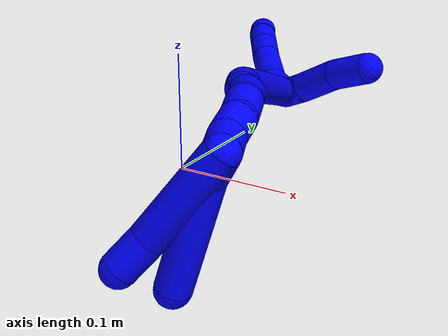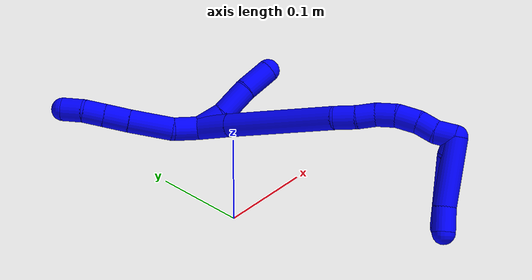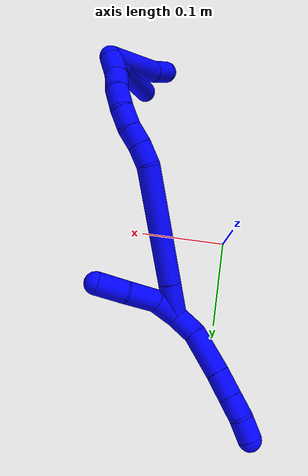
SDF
<sdf version="1.7">
 <world name="default">
  <model name="photoneo_s_sensor">
   <static>1</static>
   <pose>0 0 2 1.57079 1.57079 3.14159</pose>
   <link name="link">
    <inertial><mass>0.1</mass></inertial>
    <sensor name="sensor" type="depth">
     <update_rate>30</update_rate>
     <camera>
      <horizontal_fov>1.22</horizontal_fov>
      <image><width>1920</width><height>1200</height><format>B8G8R8</format></image>
      <clip><near>0.1</near><far>4</far></clip>
      <depth_camera><output>points</output></depth_camera>
     </camera>
     <plugin name="camera_plugin" filename="libgazebo_ros_depth_camera.so">
      <baseline>0.2</baseline>
      <alwaysOn>1</alwaysOn>
      <updateRate>0.0</updateRate>
      <cameraName>camera_ir</cameraName>
      <imageTopicName>/camera/color/image_raw</imageTopicName>
      <cameraInfoTopicName>/camera/color/camera_info</cameraInfoTopicName>
      <depthImageTopicName>/camera/depth/image_raw</depthImageTopicName>
      <depthImageCameraInfoTopicName>/camera/depth/camera_info</depthImageCameraInfoTopicName>
      <pointCloudTopicName>/camera/depth/points</pointCloudTopicName>
      <frameName>fr_optical</frameName>
      <pointCloudCutoff>0.1</pointCloudCutoff>
      <pointCloudCutoffMax>2.0</pointCloudCutoffMax>
      <distortionK1>0</distortionK1>
      <distortionK2>0</distortionK2>
      <distortionK3>0</distortionK3>
      <distortionT1>0</distortionT1>
      <distortionT2>0</distortionT2>
      <CxPrime>0</CxPrime>
      <Cx>0</Cx>
      <Cy>0</Cy>
      <focalLength>0</focalLength>
      <hackBaseline>0</hackBaseline>
     </plugin>
    </sensor>
   </link>
  </model>
  <model name="bin">
   <static>1</static>
   <link name="bottom">
    <collision name="collision-bottom">
     <pose>0 0 -0.01 0 -0 0</pose>
     <geometry><box><size>0.8 0.6 0.02</size></box></geometry>
     <surface>
      <friction><ode><mu>100</mu><mu2>100</mu2></ode></friction>
      <contact><collide_bitmask>65535</collide_bitmask></contact>
     </surface>
    </collision>
   </link>
   <link name="west_wall">
    <collision name="collision-west_wall">
     <pose>-0.41 0 0.1 0 -0 0</pose>
     <geometry><box><size>0.02 0.6 0.2</size></box></geometry>
     <surface>
      <friction><ode><mu>100</mu><mu2>100</mu2></ode></friction>
      <contact><collide_bitmask>65535</collide_bitmask></contact>
     </surface>
    </collision>
   </link>
   <link name="east_wall">
    <collision name="collision-east_wall">
     <pose>0.41 0 0.1 0 -0 0</pose>
     <geometry><box><size>0.02 0.6 0.2</size></box></geometry>
     <surface>
      <friction><ode><mu>100</mu><mu2>100</mu2></ode></friction>
      <contact><collide_bitmask>65535</collide_bitmask></contact>
     </surface>
    </collision>
   </link>
   <link name="south_wall">
    <collision name="collision-south_wall">
     <pose>0 -0.31 0.1 0 -0 0</pose>
     <geometry><box><size>0.8 0.02 0.2</size></box></geometry>
     <surface>
      <friction><ode><mu>100</mu><mu2>100</mu2></ode></friction>
      <contact><collide_bitmask>65535</collide_bitmask></contact>
     </surface>
    </collision>
   </link>
   <link name="north_wall">
    <collision name="collision-north_wall">
     <pose>0 0.31 0.1 0 -0 0</pose>
     <geometry><box><size>0.8 0.02 0.2</size></box></geometry>
     <surface>
      <friction><ode><mu>100</mu><mu2>100</mu2></ode></friction>
      <contact><collide_bitmask>65535</collide_bitmask></contact>
     </surface>
    </collision>
   </link>
  </model>
  <model name="1">
   <static>0</static>
   <link name="1">
    <collision name="collision-cylinder-e_1_2_8">
     <pose>-0.010639 0.009404 -0.001386 -1.71712 -0.841604 0.956403</pose>
     <geometry><cylinder><radius>0.0125</radius><length>0.028533</length></cylinder></geometry>
     <surface>
      <friction><ode><mu>1.16</mu><mu2>1.16</mu2><slip1>0</slip1><slip2>0</slip2></ode></friction>
      <contact><ode><kp>1e+06</kp><kd>1</kd><max_vel>0</max_vel><min_depth>0.001</min_depth></ode></contact>
     </surface>
    </collision>
    <visual name="visual-cylinder-e_1_2_8">
     <pose>-0.010639 0.009404 -0.001386 -1.71712 -0.841604 0.956403</pose>
     <geometry><cylinder><radius>0.0125</radius><length>0.028533</length></cylinder></geometry>
     <material><ambient>0 0 1 1</ambient></material>
    </visual>
    <collision name="collision-cylinder-e_2_8_9">
     <pose>-0.035792 0.037675 0.000765 -1.38547 -0.647393 0.543129</pose>
     <geometry><cylinder><radius>0.0125</radius><length>0.048132</length></cylinder></geometry>
     <surface>
      <friction><ode><mu>1.16</mu><mu2>1.16</mu2><slip1>0</slip1><slip2>0</slip2></ode></friction>
      <contact><ode><kp>1e+06</kp><kd>1</kd><max_vel>0</max_vel><min_depth>0.001</min_depth></ode></contact>
     </surface>
    </collision>
    <visual name="visual-cylinder-e_2_8_9">
     <pose>-0.035792 0.037675 0.000765 -1.38547 -0.647393 0.543129</pose>
     <geometry><cylinder><radius>0.0125</radius><length>0.048132</length></cylinder></geometry>
     <material><ambient>0 0 1 1</ambient></material>
    </visual>
    <collision name="collision-cylinder-e_3_9_10">
     <pose>-0.058119 0.067442 0.006812 -1.34451 -0.609719 0.490811</pose>
     <geometry><cylinder><radius>0.0125</radius><length>0.027286</length></cylinder></geometry>
     <surface>
      <friction><ode><mu>1.16</mu><mu2>1.16</mu2><slip1>0</slip1><slip2>0</slip2></ode></friction>
      <contact><ode><kp>1e+06</kp><kd>1</kd><max_vel>0</max_vel><min_depth>0.001</min_depth></ode></contact>
     </surface>
    </collision>
    <visual name="visual-cylinder-e_3_9_10">
     <pose>-0.058119 0.067442 0.006812 -1.34451 -0.609719 0.490811</pose>
     <geometry><cylinder><radius>0.0125</radius><length>0.027286</length></cylinder></geometry>
     <material><ambient>0 0 1 1</ambient></material>
    </visual>
    <collision name="collision-cylinder-e_4_10_11">
     <pose>-0.072527 0.08749 0.011359 -1.35171 -0.61325 0.497231</pose>
     <geometry><cylinder><radius>0.0125</radius><length>0.022921</length></cylinder></geometry>
     <surface>
      <friction><ode><mu>1.16</mu><mu2>1.16</mu2><slip1>0</slip1><slip2>0</slip2></ode></friction>
      <contact><ode><kp>1e+06</kp><kd>1</kd><max_vel>0</max_vel><min_depth>0.001</min_depth></ode></contact>
     </surface>
    </collision>
    <visual name="visual-cylinder-e_4_10_11">
     <pose>-0.072527 0.08749 0.011359 -1.35171 -0.61325 0.497231</pose>
     <geometry><cylinder><radius>0.0125</radius><length>0.022921</length></cylinder></geometry>
     <material><ambient>0 0 1 1</ambient></material>
    </visual>
    <collision name="collision-cylinder-e_5_11_6">
     <pose>-0.083587 0.10728 0.014128 -1.50206 -0.396366 0.370638</pose>
     <geometry><cylinder><radius>0.0125</radius><length>0.023128</length></cylinder></geometry>
     <surface>
      <friction><ode><mu>1.16</mu><mu2>1.16</mu2><slip1>0</slip1><slip2>0</slip2></ode></friction>
      <contact><ode><kp>1e+06</kp><kd>1</kd><max_vel>0</max_vel><min_depth>0.001</min_depth></ode></contact>
     </surface>
    </collision>
    <visual name="visual-cylinder-e_5_11_6">
     <pose>-0.083587 0.10728 0.014128 -1.50206 -0.396366 0.370638</pose>
     <geometry><cylinder><radius>0.0125</radius><length>0.023128</length></cylinder></geometry>
     <material><ambient>0 0 1 1</ambient></material>
    </visual>
    <collision name="collision-cylinder-e_1_2_12">
     <pose>0.006621 -0.010633 0.008054 0.92251 0.460744 0.232087</pose>
     <geometry><cylinder><radius>0.0125</radius><length>0.029784</length></cylinder></geometry>
     <surface>
      <friction><ode><mu>1.16</mu><mu2>1.16</mu2><slip1>0</slip1><slip2>0</slip2></ode></friction>
      <contact><ode><kp>1e+06</kp><kd>1</kd><max_vel>0</max_vel><min_depth>0.001</min_depth></ode></contact>
     </surface>
    </collision>
    <visual name="visual-cylinder-e_1_2_12">
     <pose>0.006621 -0.010633 0.008054 0.92251 0.460744 0.232087</pose>
     <geometry><cylinder><radius>0.0125</radius><length>0.029784</length></cylinder></geometry>
     <material><ambient>0 0 1 1</ambient></material>
    </visual>
    <collision name="collision-cylinder-e_2_12_13">
     <pose>0.021817 -0.029577 0.029964 0.540329 0.487917 0.13765</pose>
     <geometry><cylinder><radius>0.0125</radius><length>0.036584</length></cylinder></geometry>
     <surface>
      <friction><ode><mu>1.16</mu><mu2>1.16</mu2><slip1>0</slip1><slip2>0</slip2></ode></friction>
      <contact><ode><kp>1e+06</kp><kd>1</kd><max_vel>0</max_vel><min_depth>0.001</min_depth></ode></contact>
     </surface>
    </collision>
    <visual name="visual-cylinder-e_2_12_13">
     <pose>0.021817 -0.029577 0.029964 0.540329 0.487917 0.13765</pose>
     <geometry><cylinder><radius>0.0125</radius><length>0.036584</length></cylinder></geometry>
     <material><ambient>0 0 1 1</ambient></material>
    </visual>
    <collision name="collision-cylinder-e_3_13_5">
     <pose>0.040433 -0.045387 0.055034 0.58934 0.639842 0.20043</pose>
     <geometry><cylinder><radius>0.0125</radius><length>0.033632</length></cylinder></geometry>
     <surface>
      <friction><ode><mu>1.16</mu><mu2>1.16</mu2><slip1>0</slip1><slip2>0</slip2></ode></friction>
      <contact><ode><kp>1e+06</kp><kd>1</kd><max_vel>0</max_vel><min_depth>0.001</min_depth></ode></contact>
     </surface>
    </collision>
    <visual name="visual-cylinder-e_3_13_5">
     <pose>0.040433 -0.045387 0.055034 0.58934 0.639842 0.20043</pose>
     <geometry><cylinder><radius>0.0125</radius><length>0.033632</length></cylinder></geometry>
     <material><ambient>0 0 1 1</ambient></material>
    </visual>
    <collision name="collision-cylinder-e_1_2_14">
     <pose>0.001081 -0.019197 0.001126 1.51222 0.056179 0.052983</pose>
     <geometry><cylinder><radius>0.0125</radius><length>0.038521</length></cylinder></geometry>
     <surface>
      <friction><ode><mu>1.16</mu><mu2>1.16</mu2><slip1>0</slip1><slip2>0</slip2></ode></friction>
      <contact><ode><kp>1e+06</kp><kd>1</kd><max_vel>0</max_vel><min_depth>0.001</min_depth></ode></contact>
     </surface>
    </collision>
    <visual name="visual-cylinder-e_1_2_14">
     <pose>0.001081 -0.019197 0.001126 1.51222 0.056179 0.052983</pose>
     <geometry><cylinder><radius>0.0125</radius><length>0.038521</length></cylinder></geometry>
     <material><ambient>0 0 1 1</ambient></material>
    </visual>
    <collision name="collision-cylinder-e_2_14_15">
     <pose>0.006573 -0.102669 0.004914 1.5294 0.06845 0.065675</pose>
     <geometry><cylinder><radius>0.0125</radius><length>0.12896</length></cylinder></geometry>
     <surface>
      <friction><ode><mu>1.16</mu><mu2>1.16</mu2><slip1>0</slip1><slip2>0</slip2></ode></friction>
      <contact><ode><kp>1e+06</kp><kd>1</kd><max_vel>0</max_vel><min_depth>0.001</min_depth></ode></contact>
     </surface>
    </collision>
    <visual name="visual-cylinder-e_2_14_15">
     <pose>0.006573 -0.102669 0.004914 1.5294 0.06845 0.065675</pose>
     <geometry><cylinder><radius>0.0125</radius><length>0.12896</length></cylinder></geometry>
     <material><ambient>0 0 1 1</ambient></material>
    </visual>
    <collision name="collision-cylinder-e_3_15_16">
     <pose>0.015015 -0.177926 0.008021 1.53027 0.351517 0.337822</pose>
     <geometry><cylinder><radius>0.0125</radius><length>0.023417</length></cylinder></geometry>
     <surface>
      <friction><ode><mu>1.16</mu><mu2>1.16</mu2><slip1>0</slip1><slip2>0</slip2></ode></friction>
      <contact><ode><kp>1e+06</kp><kd>1</kd><max_vel>0</max_vel><min_depth>0.001</min_depth></ode></contact>
     </surface>
    </collision>
    <visual name="visual-cylinder-e_3_15_16">
     <pose>0.015015 -0.177926 0.008021 1.53027 0.351517 0.337822</pose>
     <geometry><cylinder><radius>0.0125</radius><length>0.023417</length></cylinder></geometry>
     <material><ambient>0 0 1 1</ambient></material>
    </visual>
    <collision name="collision-cylinder-e_4_16_17">
     <pose>0.023458 -0.198195 0.010028 1.40416 0.438188 0.372324</pose>
     <geometry><cylinder><radius>0.0125</radius><length>0.020795</length></cylinder></geometry>
     <surface>
      <friction><ode><mu>1.16</mu><mu2>1.16</mu2><slip1>0</slip1><slip2>0</slip2></ode></friction>
      <contact><ode><kp>1e+06</kp><kd>1</kd><max_vel>0</max_vel><min_depth>0.001</min_depth></ode></contact>
     </surface>
    </collision>
    <visual name="visual-cylinder-e_4_16_17">
     <pose>0.023458 -0.198195 0.010028 1.40416 0.438188 0.372324</pose>
     <geometry><cylinder><radius>0.0125</radius><length>0.020795</length></cylinder></geometry>
     <material><ambient>0 0 1 1</ambient></material>
    </visual>
    <collision name="collision-cylinder-e_5_17_18">
     <pose>0.03174 -0.217774 0.011121 1.61626 0.359268 0.375602</pose>
     <geometry><cylinder><radius>0.0125</radius><length>0.022016</length></cylinder></geometry>
     <surface>
      <friction><ode><mu>1.16</mu><mu2>1.16</mu2><slip1>0</slip1><slip2>0</slip2></ode></friction>
      <contact><ode><kp>1e+06</kp><kd>1</kd><max_vel>0</max_vel><min_depth>0.001</min_depth></ode></contact>
     </surface>
    </collision>
    <visual name="visual-cylinder-e_5_17_18">
     <pose>0.03174 -0.217774 0.011121 1.61626 0.359268 0.375602</pose>
     <geometry><cylinder><radius>0.0125</radius><length>0.022016</length></cylinder></geometry>
     <material><ambient>0 0 1 1</ambient></material>
    </visual>
    <collision name="collision-cylinder-e_6_18_19">
     <pose>0.040306 -0.238546 0.007395 1.87228 0.40435 0.543045</pose>
     <geometry><cylinder><radius>0.0125</radius><length>0.02387</length></cylinder></geometry>
     <surface>
      <friction><ode><mu>1.16</mu><mu2>1.16</mu2><slip1>0</slip1><slip2>0</slip2></ode></friction>
      <contact><ode><kp>1e+06</kp><kd>1</kd><max_vel>0</max_vel><min_depth>0.001</min_depth></ode></contact>
     </surface>
    </collision>
    <visual name="visual-cylinder-e_6_18_19">
     <pose>0.040306 -0.238546 0.007395 1.87228 0.40435 0.543045</pose>
     <geometry><cylinder><radius>0.0125</radius><length>0.02387</length></cylinder></geometry>
     <material><ambient>0 0 1 1</ambient></material>
    </visual>
    <collision name="collision-cylinder-e_7_19_20">
     <pose>0.048163 -0.257483 -0.000852 2.10363 0.31146 0.536467</pose>
     <geometry><cylinder><radius>0.0125</radius><length>0.020634</length></cylinder></geometry>
     <surface>
      <friction><ode><mu>1.16</mu><mu2>1.16</mu2><slip1>0</slip1><slip2>0</slip2></ode></friction>
      <contact><ode><kp>1e+06</kp><kd>1</kd><max_vel>0</max_vel><min_depth>0.001</min_depth></ode></contact>
     </surface>
    </collision>
    <visual name="visual-cylinder-e_7_19_20">
     <pose>0.048163 -0.257483 -0.000852 2.10363 0.31146 0.536467</pose>
     <geometry><cylinder><radius>0.0125</radius><length>0.020634</length></cylinder></geometry>
     <material><ambient>0 0 1 1</ambient></material>
    </visual>
    <collision name="collision-cylinder-e_8_20_1">
     <pose>0.055658 -0.275651 -0.008211 1.81025 0.409167 0.516661</pose>
     <geometry><cylinder><radius>0.0125</radius><length>0.021786</length></cylinder></geometry>
     <surface>
      <friction><ode><mu>1.16</mu><mu2>1.16</mu2><slip1>0</slip1><slip2>0</slip2></ode></friction>
      <contact><ode><kp>1e+06</kp><kd>1</kd><max_vel>0</max_vel><min_depth>0.001</min_depth></ode></contact>
     </surface>
    </collision>
    <visual name="visual-cylinder-e_8_20_1">
     <pose>0.055658 -0.275651 -0.008211 1.81025 0.409167 0.516661</pose>
     <geometry><cylinder><radius>0.0125</radius><length>0.021786</length></cylinder></geometry>
     <material><ambient>0 0 1 1</ambient></material>
    </visual>
    <collision name="collision-cylinder-e_1_1_21">
     <pose>0.06058 -0.28105 -0.02016 -2.71885 0.055908 -0.259159</pose>
     <geometry><cylinder><radius>0.0125</radius><length>0.02104</length></cylinder></geometry>
     <surface>
      <friction><ode><mu>1.16</mu><mu2>1.16</mu2><slip1>0</slip1><slip2>0</slip2></ode></friction>
      <contact><ode><kp>1e+06</kp><kd>1</kd><max_vel>0</max_vel><min_depth>0.001</min_depth></ode></contact>
     </surface>
    </collision>
    <visual name="visual-cylinder-e_1_1_21">
     <pose>0.06058 -0.28105 -0.02016 -2.71885 0.055908 -0.259159</pose>
     <geometry><cylinder><radius>0.0125</radius><length>0.02104</length></cylinder></geometry>
     <material><ambient>0 0 1 1</ambient></material>
    </visual>
    <collision name="collision-cylinder-e_2_21_4">
     <pose>0.073197 -0.266536 -0.065931 -2.86676 0.309608 -1.69135</pose>
     <geometry><cylinder><radius>0.0125</radius><length>0.07896</length></cylinder></geometry>
     <surface>
      <friction><ode><mu>1.16</mu><mu2>1.16</mu2><slip1>0</slip1><slip2>0</slip2></ode></friction>
      <contact><ode><kp>1e+06</kp><kd>1</kd><max_vel>0</max_vel><min_depth>0.001</min_depth></ode></contact>
     </surface>
    </collision>
    <visual name="visual-cylinder-e_2_21_4">
     <pose>0.073197 -0.266536 -0.065931 -2.86676 0.309608 -1.69135</pose>
     <geometry><cylinder><radius>0.0125</radius><length>0.07896</length></cylinder></geometry>
     <material><ambient>0 0 1 1</ambient></material>
    </visual>
    <collision name="collision-cylinder-e_1_1_22">
     <pose>0.058549 -0.280415 -0.046906 -3.00631 -0.039352 0.565416</pose>
     <geometry><cylinder><radius>0.0125</radius><length>0.073376</length></cylinder></geometry>
     <surface>
      <friction><ode><mu>1.16</mu><mu2>1.16</mu2><slip1>0</slip1><slip2>0</slip2></ode></friction>
      <contact><ode><kp>1e+06</kp><kd>1</kd><max_vel>0</max_vel><min_depth>0.001</min_depth></ode></contact>
     </surface>
    </collision>
    <visual name="visual-cylinder-e_1_1_22">
     <pose>0.058549 -0.280415 -0.046906 -3.00631 -0.039352 0.565416</pose>
     <geometry><cylinder><radius>0.0125</radius><length>0.073376</length></cylinder></geometry>
     <material><ambient>0 0 1 1</ambient></material>
    </visual>
    <collision name="collision-cylinder-e_2_22_3">
     <pose>0.056272 -0.275875 -0.09651 3.11119 -0.062609 -2.2377</pose>
     <geometry><cylinder><radius>0.0125</radius><length>0.026624</length></cylinder></geometry>
     <surface>
      <friction><ode><mu>1.16</mu><mu2>1.16</mu2><slip1>0</slip1><slip2>0</slip2></ode></friction>
      <contact><ode><kp>1e+06</kp><kd>1</kd><max_vel>0</max_vel><min_depth>0.001</min_depth></ode></contact>
     </surface>
    </collision>
    <visual name="visual-cylinder-e_2_22_3">
     <pose>0.056272 -0.275875 -0.09651 3.11119 -0.062609 -2.2377</pose>
     <geometry><cylinder><radius>0.0125</radius><length>0.026624</length></cylinder></geometry>
     <material><ambient>0 0 1 1</ambient></material>
    </visual>
    <collision name="collision-sphere-3">
     <pose>0.05544 -0.276279 -0.10979 0 -0 0</pose>
     <geometry><sphere><radius>0.0125</radius></sphere></geometry>
     <surface>
      <friction><ode><mu>1.16</mu><mu2>1.16</mu2><slip1>0</slip1><slip2>0</slip2></ode></friction>
      <contact><ode><kp>1e+06</kp><kd>1</kd><max_vel>0</max_vel><min_depth>0.001</min_depth></ode></contact>
     </surface>
    </collision>
    <visual name="visual-sphere-3">
     <pose>0.05544 -0.276279 -0.10979 0 -0 0</pose>
     <geometry><sphere><radius>0.0125</radius></sphere></geometry>
     <material><ambient>0 0 1 1</ambient></material>
    </visual>
    <collision name="collision-sphere-22">
     <pose>0.057105 -0.275471 -0.083231 0 -0 0</pose>
     <geometry><sphere><radius>0.0125</radius></sphere></geometry>
     <surface>
      <friction><ode><mu>1.16</mu><mu2>1.16</mu2><slip1>0</slip1><slip2>0</slip2></ode></friction>
      <contact><ode><kp>1e+06</kp><kd>1</kd><max_vel>0</max_vel><min_depth>0.001</min_depth></ode></contact>
     </surface>
    </collision>
    <visual name="visual-sphere-22">
     <pose>0.057105 -0.275471 -0.083231 0 -0 0</pose>
     <geometry><sphere><radius>0.0125</radius></sphere></geometry>
     <material><ambient>0 0 1 1</ambient></material>
    </visual>
    <collision name="collision-sphere-4">
     <pose>0.085226 -0.256331 -0.102122 0 -0 0</pose>
     <geometry><sphere><radius>0.0125</radius></sphere></geometry>
     <surface>
      <friction><ode><mu>1.16</mu><mu2>1.16</mu2><slip1>0</slip1><slip2>0</slip2></ode></friction>
      <contact><ode><kp>1e+06</kp><kd>1</kd><max_vel>0</max_vel><min_depth>0.001</min_depth></ode></contact>
     </surface>
    </collision>
    <visual name="visual-sphere-4">
     <pose>0.085226 -0.256331 -0.102122 0 -0 0</pose>
     <geometry><sphere><radius>0.0125</radius></sphere></geometry>
     <material><ambient>0 0 1 1</ambient></material>
    </visual>
    <collision name="collision-sphere-21">
     <pose>0.061168 -0.276741 -0.029739 0 -0 0</pose>
     <geometry><sphere><radius>0.0125</radius></sphere></geometry>
     <surface>
      <friction><ode><mu>1.16</mu><mu2>1.16</mu2><slip1>0</slip1><slip2>0</slip2></ode></friction>
      <contact><ode><kp>1e+06</kp><kd>1</kd><max_vel>0</max_vel><min_depth>0.001</min_depth></ode></contact>
     </surface>
    </collision>
    <visual name="visual-sphere-21">
     <pose>0.061168 -0.276741 -0.029739 0 -0 0</pose>
     <geometry><sphere><radius>0.0125</radius></sphere></geometry>
     <material><ambient>0 0 1 1</ambient></material>
    </visual>
    <collision name="collision-sphere-1">
     <pose>0.059992 -0.28536 -0.010581 0 -0 0</pose>
     <geometry><sphere><radius>0.0125</radius></sphere></geometry>
     <surface>
      <friction><ode><mu>1.16</mu><mu2>1.16</mu2><slip1>0</slip1><slip2>0</slip2></ode></friction>
      <contact><ode><kp>1e+06</kp><kd>1</kd><max_vel>0</max_vel><min_depth>0.001</min_depth></ode></contact>
     </surface>
    </collision>
    <visual name="visual-sphere-1">
     <pose>0.059992 -0.28536 -0.010581 0 -0 0</pose>
     <geometry><sphere><radius>0.0125</radius></sphere></geometry>
     <material><ambient>0 0 1 1</ambient></material>
    </visual>
    <collision name="collision-sphere-6">
     <pose>-0.088052 0.117923 0.014861 0 -0 0</pose>
     <geometry><sphere><radius>0.0125</radius></sphere></geometry>
     <surface>
      <friction><ode><mu>1.16</mu><mu2>1.16</mu2><slip1>0</slip1><slip2>0</slip2></ode></friction>
      <contact><ode><kp>1e+06</kp><kd>1</kd><max_vel>0</max_vel><min_depth>0.001</min_depth></ode></contact>
     </surface>
    </collision>
    <visual name="visual-sphere-6">
     <pose>-0.088052 0.117923 0.014861 0 -0 0</pose>
     <geometry><sphere><radius>0.0125</radius></sphere></geometry>
     <material><ambient>0 0 1 1</ambient></material>
    </visual>
    <collision name="collision-sphere-11">
     <pose>-0.079123 0.096638 0.013395 0 -0 0</pose>
     <geometry><sphere><radius>0.0125</radius></sphere></geometry>
     <surface>
      <friction><ode><mu>1.16</mu><mu2>1.16</mu2><slip1>0</slip1><slip2>0</slip2></ode></friction>
      <contact><ode><kp>1e+06</kp><kd>1</kd><max_vel>0</max_vel><min_depth>0.001</min_depth></ode></contact>
     </surface>
    </collision>
    <visual name="visual-sphere-11">
     <pose>-0.079123 0.096638 0.013395 0 -0 0</pose>
     <geometry><sphere><radius>0.0125</radius></sphere></geometry>
     <material><ambient>0 0 1 1</ambient></material>
    </visual>
    <collision name="collision-sphere-10">
     <pose>-0.065931 0.078342 0.009322 0 -0 0</pose>
     <geometry><sphere><radius>0.0125</radius></sphere></geometry>
     <surface>
      <friction><ode><mu>1.16</mu><mu2>1.16</mu2><slip1>0</slip1><slip2>0</slip2></ode></friction>
      <contact><ode><kp>1e+06</kp><kd>1</kd><max_vel>0</max_vel><min_depth>0.001</min_depth></ode></contact>
     </surface>
    </collision>
    <visual name="visual-sphere-10">
     <pose>-0.065931 0.078342 0.009322 0 -0 0</pose>
     <geometry><sphere><radius>0.0125</radius></sphere></geometry>
     <material><ambient>0 0 1 1</ambient></material>
    </visual>
    <collision name="collision-sphere-9">
     <pose>-0.050306 0.056543 0.004303 0 -0 0</pose>
     <geometry><sphere><radius>0.0125</radius></sphere></geometry>
     <surface>
      <friction><ode><mu>1.16</mu><mu2>1.16</mu2><slip1>0</slip1><slip2>0</slip2></ode></friction>
      <contact><ode><kp>1e+06</kp><kd>1</kd><max_vel>0</max_vel><min_depth>0.001</min_depth></ode></contact>
     </surface>
    </collision>
    <visual name="visual-sphere-9">
     <pose>-0.050306 0.056543 0.004303 0 -0 0</pose>
     <geometry><sphere><radius>0.0125</radius></sphere></geometry>
     <material><ambient>0 0 1 1</ambient></material>
    </visual>
    <collision name="collision-sphere-2">
     <geometry><sphere><radius>0.0125</radius></sphere></geometry>
     <surface>
      <friction><ode><mu>1.16</mu><mu2>1.16</mu2><slip1>0</slip1><slip2>0</slip2></ode></friction>
      <contact><ode><kp>1e+06</kp><kd>1</kd><max_vel>0</max_vel><min_depth>0.001</min_depth></ode></contact>
     </surface>
    </collision>
    <visual name="visual-sphere-2">
     <geometry><sphere><radius>0.0125</radius></sphere></geometry>
     <material><ambient>0 0 1 1</ambient></material>
    </visual>
    <collision name="collision-sphere-19">
     <pose>0.045001 -0.249023 0.004137 0 -0 0</pose>
     <geometry><sphere><radius>0.0125</radius></sphere></geometry>
     <surface>
      <friction><ode><mu>1.16</mu><mu2>1.16</mu2><slip1>0</slip1><slip2>0</slip2></ode></friction>
      <contact><ode><kp>1e+06</kp><kd>1</kd><max_vel>0</max_vel><min_depth>0.001</min_depth></ode></contact>
     </surface>
    </collision>
    <visual name="visual-sphere-19">
     <pose>0.045001 -0.249023 0.004137 0 -0 0</pose>
     <geometry><sphere><radius>0.0125</radius></sphere></geometry>
     <material><ambient>0 0 1 1</ambient></material>
    </visual>
    <collision name="collision-sphere-8">
     <pose>-0.021277 0.018807 -0.002772 0 -0 0</pose>
     <geometry><sphere><radius>0.0125</radius></sphere></geometry>
     <surface>
      <friction><ode><mu>1.16</mu><mu2>1.16</mu2><slip1>0</slip1><slip2>0</slip2></ode></friction>
      <contact><ode><kp>1e+06</kp><kd>1</kd><max_vel>0</max_vel><min_depth>0.001</min_depth></ode></contact>
     </surface>
    </collision>
    <visual name="visual-sphere-8">
     <pose>-0.021277 0.018807 -0.002772 0 -0 0</pose>
     <geometry><sphere><radius>0.0125</radius></sphere></geometry>
     <material><ambient>0 0 1 1</ambient></material>
    </visual>
    <collision name="collision-sphere-12">
     <pose>0.013242 -0.021265 0.016109 0 -0 0</pose>
     <geometry><sphere><radius>0.0125</radius></sphere></geometry>
     <surface>
      <friction><ode><mu>1.16</mu><mu2>1.16</mu2><slip1>0</slip1><slip2>0</slip2></ode></friction>
      <contact><ode><kp>1e+06</kp><kd>1</kd><max_vel>0</max_vel><min_depth>0.001</min_depth></ode></contact>
     </surface>
    </collision>
    <visual name="visual-sphere-12">
     <pose>0.013242 -0.021265 0.016109 0 -0 0</pose>
     <geometry><sphere><radius>0.0125</radius></sphere></geometry>
     <material><ambient>0 0 1 1</ambient></material>
    </visual>
    <collision name="collision-sphere-13">
     <pose>0.030392 -0.037889 0.04382 0 -0 0</pose>
     <geometry><sphere><radius>0.0125</radius></sphere></geometry>
     <surface>
      <friction><ode><mu>1.16</mu><mu2>1.16</mu2><slip1>0</slip1><slip2>0</slip2></ode></friction>
      <contact><ode><kp>1e+06</kp><kd>1</kd><max_vel>0</max_vel><min_depth>0.001</min_depth></ode></contact>
     </surface>
    </collision>
    <visual name="visual-sphere-13">
     <pose>0.030392 -0.037889 0.04382 0 -0 0</pose>
     <geometry><sphere><radius>0.0125</radius></sphere></geometry>
     <material><ambient>0 0 1 1</ambient></material>
    </visual>
    <collision name="collision-sphere-5">
     <pose>0.050473 -0.052884 0.066248 0 -0 0</pose>
     <geometry><sphere><radius>0.0125</radius></sphere></geometry>
     <surface>
      <friction><ode><mu>1.16</mu><mu2>1.16</mu2><slip1>0</slip1><slip2>0</slip2></ode></friction>
      <contact><ode><kp>1e+06</kp><kd>1</kd><max_vel>0</max_vel><min_depth>0.001</min_depth></ode></contact>
     </surface>
    </collision>
    <visual name="visual-sphere-5">
     <pose>0.050473 -0.052884 0.066248 0 -0 0</pose>
     <geometry><sphere><radius>0.0125</radius></sphere></geometry>
     <material><ambient>0 0 1 1</ambient></material>
    </visual>
    <collision name="collision-sphere-14">
     <pose>0.002163 -0.038395 0.002252 0 -0 0</pose>
     <geometry><sphere><radius>0.0125</radius></sphere></geometry>
     <surface>
      <friction><ode><mu>1.16</mu><mu2>1.16</mu2><slip1>0</slip1><slip2>0</slip2></ode></friction>
      <contact><ode><kp>1e+06</kp><kd>1</kd><max_vel>0</max_vel><min_depth>0.001</min_depth></ode></contact>
     </surface>
    </collision>
    <visual name="visual-sphere-14">
     <pose>0.002163 -0.038395 0.002252 0 -0 0</pose>
     <geometry><sphere><radius>0.0125</radius></sphere></geometry>
     <material><ambient>0 0 1 1</ambient></material>
    </visual>
    <collision name="collision-sphere-15">
     <pose>0.010983 -0.166942 0.007576 0 -0 0</pose>
     <geometry><sphere><radius>0.0125</radius></sphere></geometry>
     <surface>
      <friction><ode><mu>1.16</mu><mu2>1.16</mu2><slip1>0</slip1><slip2>0</slip2></ode></friction>
      <contact><ode><kp>1e+06</kp><kd>1</kd><max_vel>0</max_vel><min_depth>0.001</min_depth></ode></contact>
     </surface>
    </collision>
    <visual name="visual-sphere-15">
     <pose>0.010983 -0.166942 0.007576 0 -0 0</pose>
     <geometry><sphere><radius>0.0125</radius></sphere></geometry>
     <material><ambient>0 0 1 1</ambient></material>
    </visual>
    <collision name="collision-sphere-16">
     <pose>0.019046 -0.18891 0.008466 0 -0 0</pose>
     <geometry><sphere><radius>0.0125</radius></sphere></geometry>
     <surface>
      <friction><ode><mu>1.16</mu><mu2>1.16</mu2><slip1>0</slip1><slip2>0</slip2></ode></friction>
      <contact><ode><kp>1e+06</kp><kd>1</kd><max_vel>0</max_vel><min_depth>0.001</min_depth></ode></contact>
     </surface>
    </collision>
    <visual name="visual-sphere-16">
     <pose>0.019046 -0.18891 0.008466 0 -0 0</pose>
     <geometry><sphere><radius>0.0125</radius></sphere></geometry>
     <material><ambient>0 0 1 1</ambient></material>
    </visual>
    <collision name="collision-sphere-17">
     <pose>0.02787 -0.207479 0.01159 0 -0 0</pose>
     <geometry><sphere><radius>0.0125</radius></sphere></geometry>
     <surface>
      <friction><ode><mu>1.16</mu><mu2>1.16</mu2><slip1>0</slip1><slip2>0</slip2></ode></friction>
      <contact><ode><kp>1e+06</kp><kd>1</kd><max_vel>0</max_vel><min_depth>0.001</min_depth></ode></contact>
     </surface>
    </collision>
    <visual name="visual-sphere-17">
     <pose>0.02787 -0.207479 0.01159 0 -0 0</pose>
     <geometry><sphere><radius>0.0125</radius></sphere></geometry>
     <material><ambient>0 0 1 1</ambient></material>
    </visual>
    <collision name="collision-sphere-18">
     <pose>0.03561 -0.228068 0.010653 0 -0 0</pose>
     <geometry><sphere><radius>0.0125</radius></sphere></geometry>
     <surface>
      <friction><ode><mu>1.16</mu><mu2>1.16</mu2><slip1>0</slip1><slip2>0</slip2></ode></friction>
      <contact><ode><kp>1e+06</kp><kd>1</kd><max_vel>0</max_vel><min_depth>0.001</min_depth></ode></contact>
     </surface>
    </collision>
    <visual name="visual-sphere-18">
     <pose>0.03561 -0.228068 0.010653 0 -0 0</pose>
     <geometry><sphere><radius>0.0125</radius></sphere></geometry>
     <material><ambient>0 0 1 1</ambient></material>
    </visual>
    <collision name="collision-sphere-20">
     <pose>0.051325 -0.265942 -0.005841 0 -0 0</pose>
     <geometry><sphere><radius>0.0125</radius></sphere></geometry>
     <surface>
      <friction><ode><mu>1.16</mu><mu2>1.16</mu2><slip1>0</slip1><slip2>0</slip2></ode></friction>
      <contact><ode><kp>1e+06</kp><kd>1</kd><max_vel>0</max_vel><min_depth>0.001</min_depth></ode></contact>
     </surface>
    </collision>
    <visual name="visual-sphere-20">
     <pose>0.051325 -0.265942 -0.005841 0 -0 0</pose>
     <geometry><sphere><radius>0.0125</radius></sphere></geometry>
     <material><ambient>0 0 1 1</ambient></material>
    </visual>
    <inertial>
     <pose>0.018123 -0.124628 -0.008514 0 -0 0</pose>
     <mass>0.75</mass>
     <inertia><ixx>0.000254</ixx><ixy>0</ixy><ixz>0</ixz><iyy>-3e-06</iyy><iyz>0</iyz><izz>0.00014</izz></inertia>
    </inertial>
   </link>
   <pose>0.047149 0.094196 0.04813 -0.42036 0.572864 -0.008362</pose>
  </model>
 </world>
</sdf>
